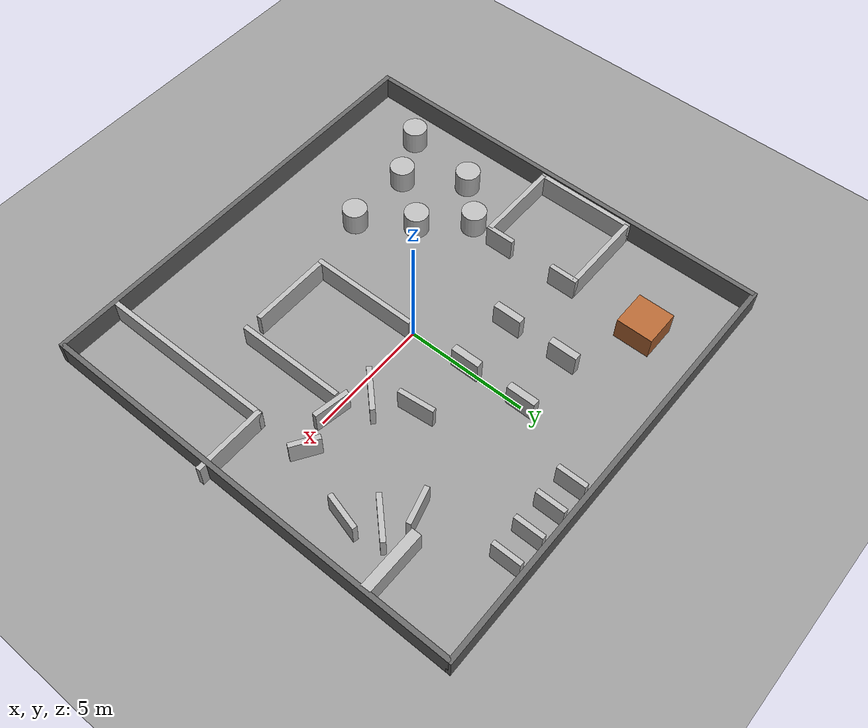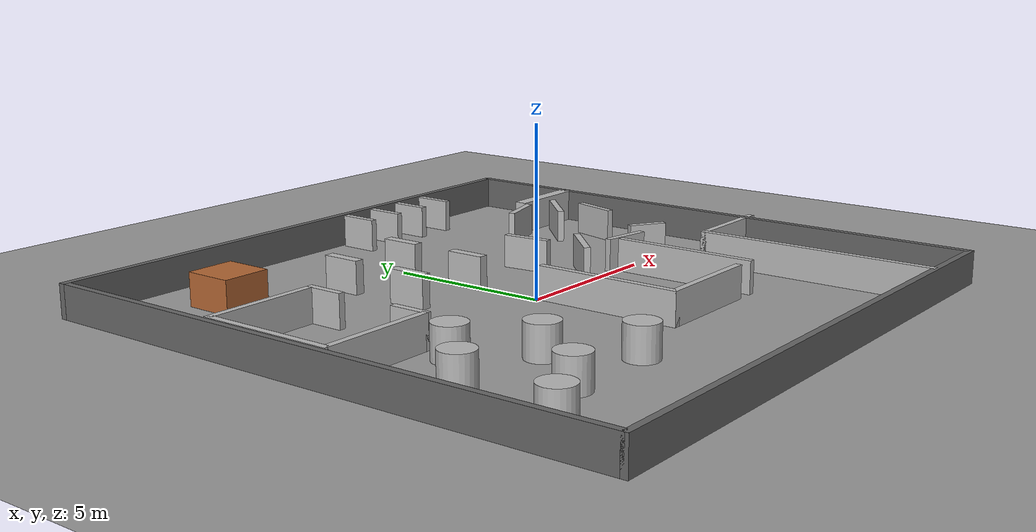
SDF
<?xml version="1.0" ?>
<sdf version="1.8">
  <world name="advanced_obstacle_world">

    <!-- 物理與時序設定 -->
    <physics name="1ms" type="ignored">
      <max_step_size>0.001</max_step_size>
      <real_time_factor>1.0</real_time_factor>
    </physics>

    <!-- 基礎系統插件 -->
    <plugin filename="gz-sim-physics-system"
            name="gz::sim::systems::Physics"/>
    <plugin filename="gz-sim-user-commands-system"
            name="gz::sim::systems::UserCommands"/>
    <plugin filename="gz-sim-scene-broadcaster-system"
            name="gz::sim::systems::SceneBroadcaster"/>
    <plugin filename="gz-sim-sensors-system"
            name="gz::sim::systems::Sensors">
      <render_engine>ogre</render_engine>
    </plugin>

    <!-- 光源 (Sun) -->
    <light type="directional" name="sun">
      <cast_shadows>true</cast_shadows>
      <pose>0 0 10 0 0 0</pose>
      <diffuse>0.8 0.8 0.8 1</diffuse>
      <specular>0.2 0.2 0.2 1</specular>
      <direction>-0.5 0.1 -0.9</direction>
    </light>

    <!-- 地面 (Ground Plane) -->
    <model name="ground_plane">
      <static>true</static>
      <link name="link">
        <collision name="collision">
          <geometry>
            <plane>
              <normal>0 0 1</normal>
              <size>40 40</size>
            </plane>
          </geometry>
        </collision>
        <visual name="visual">
          <geometry>
            <plane>
              <normal>0 0 1</normal>
              <size>40 40</size>
            </plane>
          </geometry>
          <material>
            <ambient>0.6 0.6 0.6 1</ambient>
            <diffuse>0.6 0.6 0.6 1</diffuse>
          </material>
        </visual>
      </link>
    </model>

    <!-- 1. 外圍邊界牆壁 (18m x 18m) -->
    <model name="outer_wall_north">
      <static>true</static>
      <pose>0 9 0.5 0 0 0</pose>
      <link name="l"><collision name="c"><geometry><box><size>18.2 0.2 1.0</size></box></geometry></collision>
      <visual name="v"><geometry><box><size>18.2 0.2 1.0</size></box></geometry><material><ambient>0.2 0.2 0.2 1</ambient><diffuse>0.4 0.4 0.4 1</diffuse></material></visual></link>
    </model>

    <model name="outer_wall_south">
      <static>true</static>
      <pose>0 -9 0.5 0 0 0</pose>
      <link name="l"><collision name="c"><geometry><box><size>18.2 0.2 1.0</size></box></geometry></collision>
      <visual name="v"><geometry><box><size>18.2 0.2 1.0</size></box></geometry><material><ambient>0.2 0.2 0.2 1</ambient><diffuse>0.4 0.4 0.4 1</diffuse></material></visual></link>
    </model>

    <model name="outer_wall_east">
      <static>true</static>
      <pose>9 0 0.5 0 0 0</pose>
      <link name="l"><collision name="c"><geometry><box><size>0.2 18.0 1.0</size></box></geometry></collision>
      <visual name="v"><geometry><box><size>0.2 18.0 1.0</size></box></geometry><material><ambient>0.2 0.2 0.2 1</ambient><diffuse>0.4 0.4 0.4 1</diffuse></material></visual></link>
    </model>

    <model name="outer_wall_west">
      <static>true</static>
      <pose>-9 0 0.5 0 0 0</pose>
      <link name="l"><collision name="c"><geometry><box><size>0.2 18.0 1.0</size></box></geometry></collision>
      <visual name="v"><geometry><box><size>0.2 18.0 1.0</size></box></geometry><material><ambient>0.2 0.2 0.2 1</ambient><diffuse>0.4 0.4 0.4 1</diffuse></material></visual></link>
    </model>

    <!-- 2. 左上角區域：正方形障礙物 & 帶開口的凹字形房間 -->
    <!-- 獨立正方形 (約在 x=-5.5, y=6.5，大小 1.5m x 1.5m) -->
    <model name="top_left_box">
      <static>true</static>
      <pose>-5.5 6.5 0.5 0 0 0</pose>
      <link name="l"><collision name="c"><geometry><box><size>1.5 1.5 1.0</size></box></geometry></collision>
      <visual name="v"><geometry><box><size>1.5 1.5 1.0</size></box></geometry><material><ambient>0.5 0.3 0.1 1</ambient><diffuse>0.7 0.4 0.2 1</diffuse></material></visual></link>
    </model>

    <!-- 凹字形隔間（帶門口）：拆解成北牆、南牆、西牆、東牆有開口 -->
    <model name="room_west_north">
      <static>true</static>
      <pose>-7 3.5 0.5 0 0 0</pose>
      <link name="l"><collision name="c"><geometry><box><size>3.5 0.2 1.0</size></box></geometry></collision>
      <visual name="v"><geometry><box><size>3.5 0.2 1.0</size></box></geometry></visual></link>
    </model>

    <model name="room_west_south">
      <static>true</static>
      <pose>-7 -0.5 0.5 0 0 0</pose>
      <link name="l"><collision name="c"><geometry><box><size>3.5 0.2 1.0</size></box></geometry></collision>
      <visual name="v"><geometry><box><size>3.5 0.2 1.0</size></box></geometry></visual></link>
    </model>

    <model name="room_west_west">
      <static>true</static>
      <pose>-8.75 1.5 0.5 0 0 0</pose>
      <link name="l"><collision name="c"><geometry><box><size>0.2 4.2 1.0</size></box></geometry></collision>
      <visual name="v"><geometry><box><size>0.2 4.2 1.0</size></box></geometry></visual></link>
    </model>

    <!-- 東側門口上方的短牆 -->
    <model name="room_west_east_top">
      <static>true</static>
      <pose>-5.25 3.0 0.5 0 0 0</pose>
      <link name="l"><collision name="c"><geometry><box><size>0.2 1.2 1.0</size></box></geometry></collision>
      <visual name="v"><geometry><box><size>0.2 1.2 1.0</size></box></geometry></visual></link>
    </model>

    <!-- 東側門口下方的短牆 -->
    <model name="room_west_east_bottom">
      <static>true</static>
      <pose>-5.25 0.0 0.5 0 0 0</pose>
      <link name="l"><collision name="c"><geometry><box><size>0.2 1.2 1.0</size></box></geometry></collision>
      <visual name="v"><geometry><box><size>0.2 1.2 1.0</size></box></geometry></visual></link>
    </model>

    <!-- 3. 上方區域：柵欄式細柱與右上橫牆 -->
    <!-- 頂部四根垂直細柱 -->
    <model name="top_post_1">
      <static>true</static>
      <pose>1.5 8.2 0.5 0 0 0</pose>
      <link name="l"><collision name="c"><geometry><box><size>0.2 1.2 1.0</size></box></geometry></collision>
      <visual name="v"><geometry><box><size>0.2 1.2 1.0</size></box></geometry></visual></link>
    </model>

    <model name="top_post_2">
      <static>true</static>
      <pose>2.7 8.2 0.5 0 0 0</pose>
      <link name="l"><collision name="c"><geometry><box><size>0.2 1.2 1.0</size></box></geometry></collision>
      <visual name="v"><geometry><box><size>0.2 1.2 1.0</size></box></geometry></visual></link>
    </model>

    <model name="top_post_3">
      <static>true</static>
      <pose>3.9 8.2 0.5 0 0 0</pose>
      <link name="l"><collision name="c"><geometry><box><size>0.2 1.2 1.0</size></box></geometry></collision>
      <visual name="v"><geometry><box><size>0.2 1.2 1.0</size></box></geometry></visual></link>
    </model>

    <model name="top_post_4">
      <static>true</static>
      <pose>5.1 8.2 0.5 0 0 0</pose>
      <link name="l"><collision name="c"><geometry><box><size>0.2 1.2 1.0</size></box></geometry></collision>
      <visual name="v"><geometry><box><size>0.2 1.2 1.0</size></box></geometry></visual></link>
    </model>

    <!-- 右上角靠牆橫板 (x=7.5, y=5.5，長 2.6m) -->
    <model name="top_right_shelf">
      <static>true</static>
      <pose>7.7 5.5 0.5 0 0 0</pose>
      <link name="l"><collision name="c"><geometry><box><size>2.6 0.4 1.0</size></box></geometry></collision>
      <visual name="v"><geometry><box><size>2.6 0.4 1.0</size></box></geometry></visual></link>
    </model>

    <!-- 中間偏左的四根方柱群 -->
    <model name="mid_left_post_1">
      <static>true</static>
      <pose>-2.5 5.0 0.5 0 0 0</pose>
      <link name="l"><collision name="c"><geometry><box><size>0.3 1.2 1.0</size></box></geometry></collision>
      <visual name="v"><geometry><box><size>0.3 1.2 1.0</size></box></geometry></visual></link>
    </model>

    <model name="mid_left_post_2">
      <static>true</static>
      <pose>0.0 5.0 0.5 0 0 0</pose>
      <link name="l"><collision name="c"><geometry><box><size>0.3 1.2 1.0</size></box></geometry></collision>
      <visual name="v"><geometry><box><size>0.3 1.2 1.0</size></box></geometry></visual></link>
    </model>

    <model name="mid_left_post_3">
      <static>true</static>
      <pose>-2.5 2.5 0.5 0 0 0</pose>
      <link name="l"><collision name="c"><geometry><box><size>0.3 1.2 1.0</size></box></geometry></collision>
      <visual name="v"><geometry><box><size>0.3 1.2 1.0</size></box></geometry></visual></link>
    </model>

    <model name="mid_left_post_4">
      <static>true</static>
      <pose>0.0 2.5 0.5 0 0 0</pose>
      <link name="l"><collision name="c"><geometry><box><size>0.3 1.2 1.0</size></box></geometry></collision>
      <visual name="v"><geometry><box><size>0.3 1.2 1.0</size></box></geometry></visual></link>
    </model>

    <!-- 4. 右側區域：雙圓弧障礙牆 (以半徑 2.5m 組裝) -->
    <!-- 右上方弧 (中心約在 x=5.0, y=2.5) -->
    <model name="arc_top_right">
      <static>true</static>
      <pose>5.0 2.5 0.5 0 0 0</pose>
      <link name="l">
        <!-- 用多個包絡立方體拼接 0 到 120 度的弧線 -->
        <collision name="c1"><pose>1.76 1.76 0 0 0 -0.78</pose><geometry><box><size>0.2 1.8 1.0</size></box></geometry></collision>
        <visual name="v1"><pose>1.76 1.76 0 0 0 -0.78</pose><geometry><box><size>0.2 1.8 1.0</size></box></geometry></visual>
        <collision name="c2"><pose>2.41 0.64 0 0 0 -0.26</pose><geometry><box><size>0.2 1.5 1.0</size></box></geometry></collision>
        <visual name="v2"><pose>2.41 0.64 0 0 0 -0.26</pose><geometry><box><size>0.2 1.5 1.0</size></box></geometry></visual>
        <collision name="c3"><pose>0.64 2.41 0 0 0 -1.31</pose><geometry><box><size>0.2 1.5 1.0</size></box></geometry></collision>
        <visual name="v3"><pose>0.64 2.41 0 0 0 -1.31</pose><geometry><box><size>0.2 1.5 1.0</size></box></geometry></visual>
      </link>
    </model>

    <!-- 左下方弧 (中心約在 x=5.0, y=2.5) -->
    <model name="arc_bottom_left">
      <static>true</static>
      <pose>5.0 2.5 0.5 0 0 0</pose>
      <link name="l">
        <!-- 拼接 160 到 290 度的弧線 -->
        <collision name="c1"><pose>-1.76 -1.76 0 0 0 -0.78</pose><geometry><box><size>0.2 1.8 1.0</size></box></geometry></collision>
        <visual name="v1"><pose>-1.76 -1.76 0 0 0 -0.78</pose><geometry><box><size>0.2 1.8 1.0</size></box></geometry></visual>
        <collision name="c2"><pose>-2.41 -0.2 0 0 0 0.1</pose><geometry><box><size>0.2 1.5 1.0</size></box></geometry></collision>
        <visual name="v2"><pose>-2.41 -0.2 0 0 0 0.1</pose><geometry><box><size>0.2 1.5 1.0</size></box></geometry></visual>
        <collision name="c3"><pose>-0.4 -2.41 0 0 0 1.4</pose><geometry><box><size>0.2 1.5 1.0</size></box></geometry></collision>
        <visual name="v3"><pose>-0.4 -2.41 0 0 0 1.4</pose><geometry><box><size>0.2 1.5 1.0</size></box></geometry></visual>
        <collision name="c4"><pose>1.3 -2.1 0 0 0 1.0</pose><geometry><box><size>0.2 1.2 1.0</size></box></geometry></collision>
        <visual name="v4"><pose>1.3 -2.1 0 0 0 1.0</pose><geometry><box><size>0.2 1.2 1.0</size></box></geometry></visual>
      </link>
    </model>

    <!-- 5. 下方與右下區域：L型、直牆、長形通道 -->
    <!-- 中下 L 型牆壁 (底邊長 3.5m, 左邊高 4.5m) -->
    <model name="mid_bottom_L_left">
      <static>true</static>
      <pose>0.2 -2.25 0.5 0 0 0</pose>
      <link name="l"><collision name="c"><geometry><box><size>0.2 4.5 1.0</size></box></geometry></collision>
      <visual name="v"><geometry><box><size>0.2 4.5 1.0</size></box></geometry></visual></link>
    </model>

    <model name="mid_bottom_L_base">
      <static>true</static>
      <pose>1.85 -4.4 0.5 0 0 0</pose>
      <link name="l"><collision name="c"><geometry><box><size>3.5 0.2 1.0</size></box></geometry></collision>
      <visual name="v"><geometry><box><size>3.5 0.2 1.0</size></box></geometry></visual></link>
    </model>

    <!-- L 型右邊的獨立直牆 (高 4.5m) -->
    <model name="mid_bottom_straight">
      <static>true</static>
      <pose>4.2 -2.25 0.5 0 0 0</pose>
      <link name="l"><collision name="c"><geometry><box><size>0.2 4.5 1.0</size></box></geometry></collision>
      <visual name="v"><geometry><box><size>0.2 4.5 1.0</size></box></geometry></visual></link>
    </model>

    <!-- 右下角大型 L 型狹窄通道 (底邊長 3m, 垂直高 7.5m 一路到底) -->
    <model name="bottom_right_L_vertical">
      <static>true</static>
      <pose>6.5 -5.25 0.5 0 0 0</pose>
      <link name="l"><collision name="c"><geometry><box><size>0.2 7.5 1.0</size></box></geometry></collision>
      <visual name="v"><geometry><box><size>0.2 7.5 1.0</size></box></geometry></visual></link>
    </model>

    <model name="bottom_right_L_base">
      <static>true</static>
      <pose>7.9 -1.6 0.5 0 0 0</pose>
      <link name="l"><collision name="c"><geometry><box><size>3.0 0.2 1.0</size></box></geometry></collision>
      <visual name="v"><geometry><box><size>3.0 0.2 1.0</size></box></geometry></visual></link>
    </model>

    <!-- 6. 左下角區域：梅花座散落的六角形/圓柱障礙物群 -->
    <!-- 在雷達與導航用途中，高密度的多邊形多改以高精度圓柱體 (Cylinder) 取代，效果最穩定 -->
    <model name="hex_1">
      <static>true</static>
      <pose>-5.5 -1.5 0.5 0 0 0</pose>
      <link name="l">
        <collision name="c"><geometry><cylinder><radius>0.5</radius><length>1.0</length></cylinder></geometry></collision>
        <visual name="v"><geometry><cylinder><radius>0.5</radius><length>1.0</length></cylinder></geometry></visual>
      </link>
    </model>

    <model name="hex_2">
      <static>true</static>
      <pose>-7.0 -3.0 0.5 0 0 0</pose>
      <link name="l">
        <collision name="c"><geometry><cylinder><radius>0.5</radius><length>1.0</length></cylinder></geometry></collision>
        <visual name="v"><geometry><cylinder><radius>0.5</radius><length>1.0</length></cylinder></geometry></visual>
      </link>
    </model>

    <model name="hex_3">
      <static>true</static>
      <pose>-4.0 -3.2 0.5 0 0 0</pose>
      <link name="l">
        <collision name="c"><geometry><cylinder><radius>0.5</radius><length>1.0</length></cylinder></geometry></collision>
        <visual name="v"><geometry><cylinder><radius>0.5</radius><length>1.0</length></cylinder></geometry></visual>
      </link>
    </model>

    <model name="hex_4">
      <static>true</static>
      <pose>-5.5 -5.2 0.5 0 0 0</pose>
      <link name="l">
        <collision name="c"><geometry><cylinder><radius>0.5</radius><length>1.0</length></cylinder></geometry></collision>
        <visual name="v"><geometry><cylinder><radius>0.5</radius><length>1.0</length></cylinder></geometry></visual>
      </link>
    </model>

    <model name="hex_5">
      <static>true</static>
      <pose>-2.6 -5.2 0.5 0 0 0</pose>
      <link name="l">
        <collision name="c"><geometry><cylinder><radius>0.5</radius><length>1.0</length></cylinder></geometry></collision>
        <visual name="v"><geometry><cylinder><radius>0.5</radius><length>1.0</length></cylinder></geometry></visual>
      </link>
    </model>

    <model name="hex_6">
      <static>true</static>
      <pose>-7.5 -6.2 0.5 0 0 0</pose>
      <link name="l">
        <collision name="c"><geometry><cylinder><radius>0.5</radius><length>1.0</length></cylinder></geometry></collision>
        <visual name="v"><geometry><cylinder><radius>0.5</radius><length>1.0</length></cylinder></geometry></visual>
      </link>
    </model>

  </world>
</sdf>
